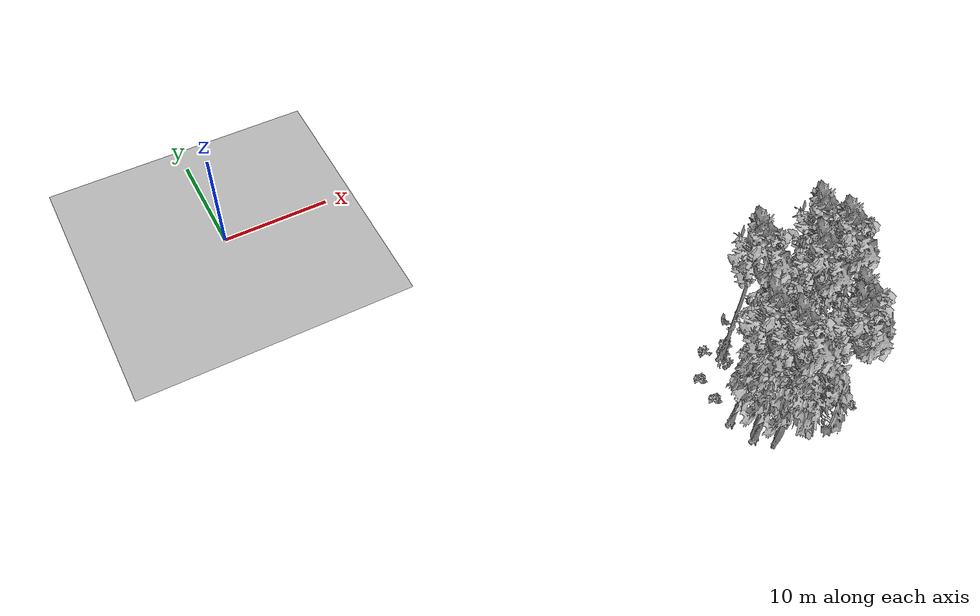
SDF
<sdf version="1.7">
 <world name="default">
  <model name="ground_plane">
   <static>1</static>
   <link name="link">
    <collision name="collision">
     <pose>-50 0 0 0 -0 0</pose>
     <geometry><plane><normal>0 0 1</normal><size>80 80</size></plane></geometry>
     <surface><contact><ode><min_depth>0.01</min_depth><max_vel>0</max_vel></ode></contact></surface>
    </collision>
    <visual name="grass">
     <cast_shadows>0</cast_shadows>
     <geometry>
      <mesh>
       <scale>0.46714285714285714 0.46714285714285714 0.1</scale>
       <uri>file://grass_plane/meshes/grass_plane.dae</uri>
      </mesh>
     </geometry>
    </visual>
   </link>
  </model>
  <model name="Tree 42">
   <static>1</static>
   <pose>37.536779501781254 -31.169941421875713 0 1.57079 -0 0</pose>
   <link name="link">
    <collision name="collision">
     <geometry><mesh><scale>3.5 5 3.5</scale><uri>model://tree_9/meshes/tree_9.obj</uri></mesh></geometry>
    </collision>
    <visual name="visual">
     <geometry><mesh><scale>3.5 5 3.5</scale><uri>model://tree_9/meshes/tree_9.obj</uri></mesh></geometry>
    </visual>
   </link>
  </model>
  <model name="Tree 156">
   <static>1</static>
   <pose>34.79290356118548 -38.76062833538275 0 1.57079 -0 0</pose>
   <link name="link">
    <collision name="collision">
     <geometry><mesh><scale>3.5 5 3.5</scale><uri>model://tree_9/meshes/tree_9.obj</uri></mesh></geometry>
    </collision>
    <visual name="visual">
     <geometry><mesh><scale>3.5 5 3.5</scale><uri>model://tree_9/meshes/tree_9.obj</uri></mesh></geometry>
    </visual>
   </link>
  </model>
  <model name="Tree 177">
   <static>1</static>
   <pose>28.738066390626827 -36.49710448899371 0 1.57079 -0 0</pose>
   <link name="link">
    <collision name="collision">
     <geometry><mesh><scale>3.5 5 3.5</scale><uri>model://tree_9/meshes/tree_9.obj</uri></mesh></geometry>
    </collision>
    <visual name="visual">
     <geometry><mesh><scale>3.5 5 3.5</scale><uri>model://tree_9/meshes/tree_9.obj</uri></mesh></geometry>
    </visual>
   </link>
  </model>
  <model name="Tree 219">
   <static>1</static>
   <pose>29.44621992911088 -38.57878931048404 0 1.57079 -0 0</pose>
   <link name="link">
    <collision name="collision">
     <geometry><mesh><scale>3.5 5 3.5</scale><uri>model://tree_9/meshes/tree_9.obj</uri></mesh></geometry>
    </collision>
    <visual name="visual">
     <geometry><mesh><scale>3.5 5 3.5</scale><uri>model://tree_9/meshes/tree_9.obj</uri></mesh></geometry>
    </visual>
   </link>
  </model>
  <model name="Tree 305">
   <static>1</static>
   <pose>33.76011302856574 -39.602131571655335 0 1.57079 -0 0</pose>
   <link name="link">
    <collision name="collision">
     <geometry><mesh><scale>3.5 5 3.5</scale><uri>model://tree_9/meshes/tree_9.obj</uri></mesh></geometry>
    </collision>
    <visual name="visual">
     <geometry><mesh><scale>3.5 5 3.5</scale><uri>model://tree_9/meshes/tree_9.obj</uri></mesh></geometry>
    </visual>
   </link>
  </model>
  <model name="Tree 361">
   <static>1</static>
   <pose>35.88636052504937 -33.035765902034385 0 1.57079 -0 0</pose>
   <link name="link">
    <collision name="collision">
     <geometry><mesh><scale>3.5 5 3.5</scale><uri>model://tree_2/meshes/tree_2.obj</uri></mesh></geometry>
    </collision>
    <visual name="visual">
     <geometry><mesh><scale>3.5 5 3.5</scale><uri>model://tree_2/meshes/tree_2.obj</uri></mesh></geometry>
    </visual>
   </link>
  </model>
  <model name="Tree 380">
   <static>1</static>
   <pose>31.940646414081556 -31.057789274734358 0 1.57079 -0 0</pose>
   <link name="link">
    <collision name="collision">
     <geometry><mesh><scale>3.5 5 3.5</scale><uri>model://tree_9/meshes/tree_9.obj</uri></mesh></geometry>
    </collision>
    <visual name="visual">
     <geometry><mesh><scale>3.5 5 3.5</scale><uri>model://tree_9/meshes/tree_9.obj</uri></mesh></geometry>
    </visual>
   </link>
  </model>
  <model name="Tree 473">
   <static>1</static>
   <pose>35.14528331408481 -33.97547948892263 0 1.57079 -0 0</pose>
   <link name="link">
    <collision name="collision">
     <geometry><mesh><scale>3.5 5 3.5</scale><uri>model://tree_9/meshes/tree_9.obj</uri></mesh></geometry>
    </collision>
    <visual name="visual">
     <geometry><mesh><scale>3.5 5 3.5</scale><uri>model://tree_9/meshes/tree_9.obj</uri></mesh></geometry>
    </visual>
   </link>
  </model>
  <model name="Tree 556">
   <static>1</static>
   <pose>30.309420887770244 -37.775476716952916 0 1.57079 -0 0</pose>
   <link name="link">
    <collision name="collision">
     <geometry><mesh><scale>3.5 5 3.5</scale><uri>model://tree_2/meshes/tree_2.obj</uri></mesh></geometry>
    </collision>
    <visual name="visual">
     <geometry><mesh><scale>3.5 5 3.5</scale><uri>model://tree_2/meshes/tree_2.obj</uri></mesh></geometry>
    </visual>
   </link>
  </model>
  <model name="Tree 620">
   <static>1</static>
   <pose>38.397147796617475 -33.218493047970156 0 1.57079 -0 0</pose>
   <link name="link">
    <collision name="collision">
     <geometry><mesh><scale>3.5 5 3.5</scale><uri>model://tree_9/meshes/tree_9.obj</uri></mesh></geometry>
    </collision>
    <visual name="visual">
     <geometry><mesh><scale>3.5 5 3.5</scale><uri>model://tree_9/meshes/tree_9.obj</uri></mesh></geometry>
    </visual>
   </link>
  </model>
  <model name="Tree 621">
   <static>1</static>
   <pose>29.2766669496162 -38.358192412059054 0 1.57079 -0 0</pose>
   <link name="link">
    <collision name="collision">
     <geometry><mesh><scale>3.5 5 3.5</scale><uri>model://tree_2/meshes/tree_2.obj</uri></mesh></geometry>
    </collision>
    <visual name="visual">
     <geometry><mesh><scale>3.5 5 3.5</scale><uri>model://tree_2/meshes/tree_2.obj</uri></mesh></geometry>
    </visual>
   </link>
  </model>
  <model name="Tree 634">
   <static>1</static>
   <pose>30.08751829800157 -39.88521740936375 0 1.57079 -0 0</pose>
   <link name="link">
    <collision name="collision">
     <geometry><mesh><scale>3.5 5 3.5</scale><uri>model://tree_2/meshes/tree_2.obj</uri></mesh></geometry>
    </collision>
    <visual name="visual">
     <geometry><mesh><scale>3.5 5 3.5</scale><uri>model://tree_2/meshes/tree_2.obj</uri></mesh></geometry>
    </visual>
   </link>
  </model>
  <model name="Bush 83">
   <static>1</static>
   <pose>37.99796072549336 -39.763957899106 0 1.57079 -0 0</pose>
   <link name="link">
    <collision name="collision">
     <geometry><mesh><scale>2 2 2</scale><uri>model://bush_2/meshes/bush_2.obj</uri></mesh></geometry>
     <surface><contact><collide_without_contact>false</collide_without_contact></contact></surface>
    </collision>
    <visual name="visual">
     <geometry><mesh><scale>2 2 2</scale><uri>model://bush_2/meshes/bush_2.obj</uri></mesh></geometry>
    </visual>
   </link>
  </model>
  <model name="Bush 104">
   <static>1</static>
   <pose>28.906017155099548 -32.16531664687202 0 1.57079 -0 0</pose>
   <link name="link">
    <collision name="collision">
     <geometry><mesh><scale>2 2 2</scale><uri>model://bush_2/meshes/bush_2.obj</uri></mesh></geometry>
     <surface><contact><collide_without_contact>false</collide_without_contact></contact></surface>
    </collision>
    <visual name="visual">
     <geometry><mesh><scale>2 2 2</scale><uri>model://bush_2/meshes/bush_2.obj</uri></mesh></geometry>
    </visual>
   </link>
  </model>
  <model name="Bush 154">
   <static>1</static>
   <pose>32.23178251127888 -30.849085108577956 0 1.57079 -0 0</pose>
   <link name="link">
    <collision name="collision">
     <geometry><mesh><scale>2 2 2</scale><uri>model://bush_2/meshes/bush_2.obj</uri></mesh></geometry>
     <surface><contact><collide_without_contact>false</collide_without_contact></contact></surface>
    </collision>
    <visual name="visual">
     <geometry><mesh><scale>2 2 2</scale><uri>model://bush_2/meshes/bush_2.obj</uri></mesh></geometry>
    </visual>
   </link>
  </model>
  <model name="Bush 193">
   <static>1</static>
   <pose>28.80234156353106 -34.26777444890587 0 1.57079 -0 0</pose>
   <link name="link">
    <collision name="collision">
     <geometry><mesh><scale>2 2 2</scale><uri>model://bush_2/meshes/bush_2.obj</uri></mesh></geometry>
     <surface><contact><collide_without_contact>false</collide_without_contact></contact></surface>
    </collision>
    <visual name="visual">
     <geometry><mesh><scale>2 2 2</scale><uri>model://bush_2/meshes/bush_2.obj</uri></mesh></geometry>
    </visual>
   </link>
  </model>
  <model name="Bush 266">
   <static>1</static>
   <pose>36.72686849914652 -39.28800332964834 0 1.57079 -0 0</pose>
   <link name="link">
    <collision name="collision">
     <geometry><mesh><scale>2 2 2</scale><uri>model://bush_5/meshes/bush_5.obj</uri></mesh></geometry>
     <surface><contact><collide_without_contact>false</collide_without_contact></contact></surface>
    </collision>
    <visual name="visual">
     <geometry><mesh><scale>2 2 2</scale><uri>model://bush_5/meshes/bush_5.obj</uri></mesh></geometry>
    </visual>
   </link>
  </model>
  <model name="Bush 272">
   <static>1</static>
   <pose>34.94789625854395 -30.65696690259262 0 1.57079 -0 0</pose>
   <link name="link">
    <collision name="collision">
     <geometry><mesh><scale>2 2 2</scale><uri>model://bush_1/meshes/bush_1.obj</uri></mesh></geometry>
     <surface><contact><collide_without_contact>false</collide_without_contact></contact></surface>
    </collision>
    <visual name="visual">
     <geometry><mesh><scale>2 2 2</scale><uri>model://bush_1/meshes/bush_1.obj</uri></mesh></geometry>
    </visual>
   </link>
  </model>
  <model name="Bush 366">
   <static>1</static>
   <pose>37.02921186025449 -30.09348260672823 0 1.57079 -0 0</pose>
   <link name="link">
    <collision name="collision">
     <geometry><mesh><scale>2 2 2</scale><uri>model://bush_2/meshes/bush_2.obj</uri></mesh></geometry>
     <surface><contact><collide_without_contact>false</collide_without_contact></contact></surface>
    </collision>
    <visual name="visual">
     <geometry><mesh><scale>2 2 2</scale><uri>model://bush_2/meshes/bush_2.obj</uri></mesh></geometry>
    </visual>
   </link>
  </model>
  <model name="Bush 377">
   <static>1</static>
   <pose>30.3006194839554 -30.387448754535747 0 1.57079 -0 0</pose>
   <link name="link">
    <collision name="collision">
     <geometry><mesh><scale>2 2 2</scale><uri>model://bush_5/meshes/bush_5.obj</uri></mesh></geometry>
     <surface><contact><collide_without_contact>false</collide_without_contact></contact></surface>
    </collision>
    <visual name="visual">
     <geometry><mesh><scale>2 2 2</scale><uri>model://bush_5/meshes/bush_5.obj</uri></mesh></geometry>
    </visual>
   </link>
  </model>
  <model name="Bush 398">
   <static>1</static>
   <pose>32.87490532444451 -30.287666568309703 0 1.57079 -0 0</pose>
   <link name="link">
    <collision name="collision">
     <geometry><mesh><scale>2 2 2</scale><uri>model://bush_2/meshes/bush_2.obj</uri></mesh></geometry>
     <surface><contact><collide_without_contact>false</collide_without_contact></contact></surface>
    </collision>
    <visual name="visual">
     <geometry><mesh><scale>2 2 2</scale><uri>model://bush_2/meshes/bush_2.obj</uri></mesh></geometry>
    </visual>
   </link>
  </model>
  <model name="Bush 502">
   <static>1</static>
   <pose>31.34711262008767 -32.19735047382834 0 1.57079 -0 0</pose>
   <link name="link">
    <collision name="collision">
     <geometry><mesh><scale>2 2 2</scale><uri>model://bush_4/meshes/bush_4.obj</uri></mesh></geometry>
     <surface><contact><collide_without_contact>false</collide_without_contact></contact></surface>
    </collision>
    <visual name="visual">
     <geometry><mesh><scale>2 2 2</scale><uri>model://bush_4/meshes/bush_4.obj</uri></mesh></geometry>
    </visual>
   </link>
  </model>
  <model name="Bush 547">
   <static>1</static>
   <pose>35.24524568699458 -36.5606248659619 0 1.57079 -0 0</pose>
   <link name="link">
    <collision name="collision">
     <geometry><mesh><scale>2 2 2</scale><uri>model://bush_1/meshes/bush_1.obj</uri></mesh></geometry>
     <surface><contact><collide_without_contact>false</collide_without_contact></contact></surface>
    </collision>
    <visual name="visual">
     <geometry><mesh><scale>2 2 2</scale><uri>model://bush_1/meshes/bush_1.obj</uri></mesh></geometry>
    </visual>
   </link>
  </model>
 </world>
</sdf>
